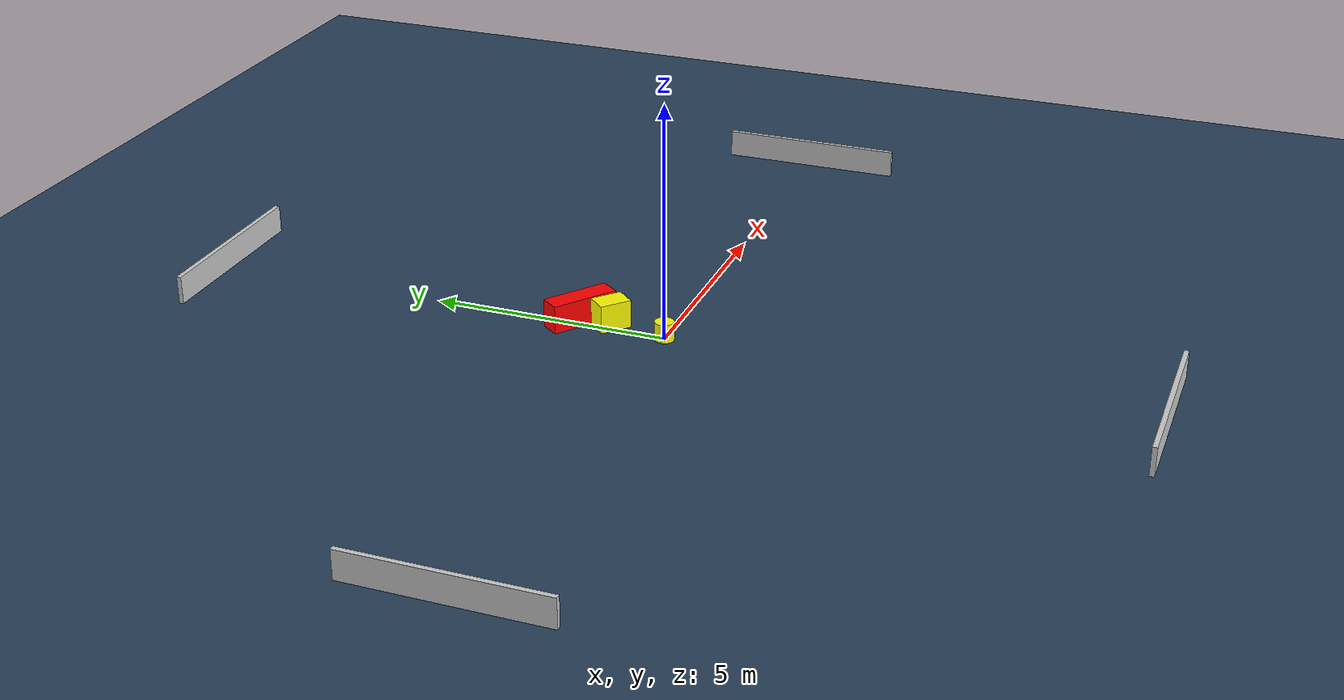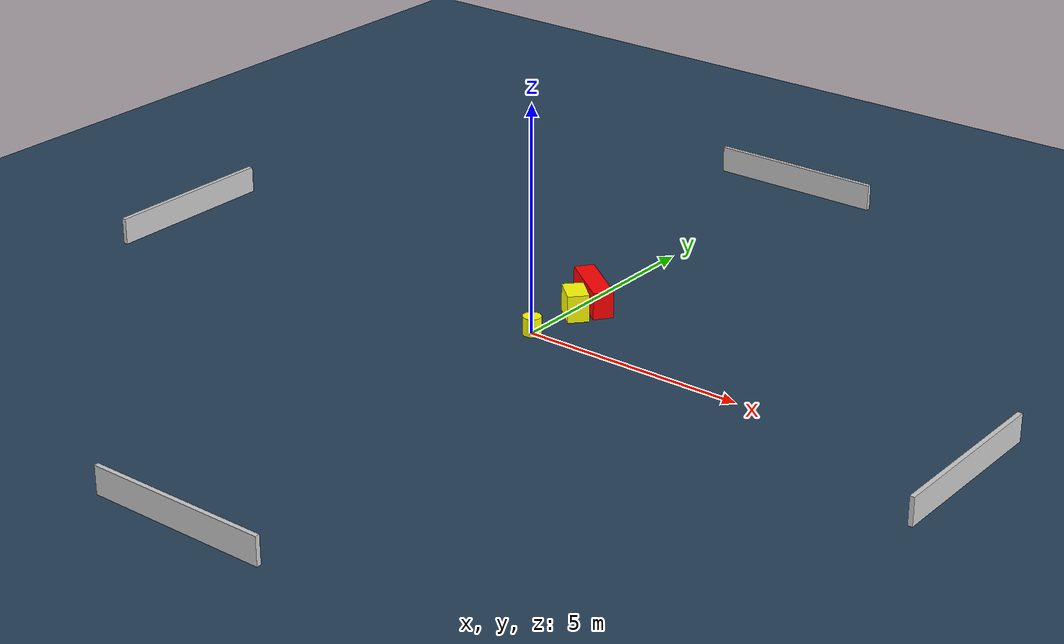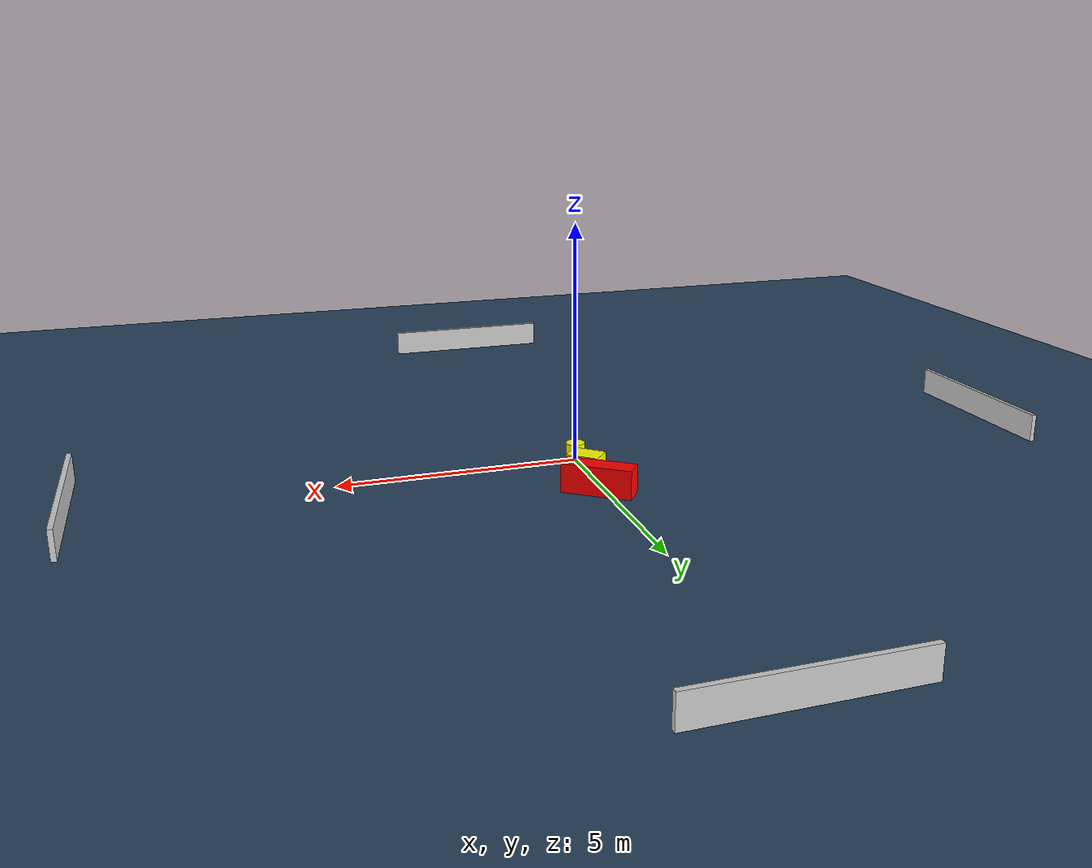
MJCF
<?xml version="1.0" ?>
<mujoco model="generated_environment">
  <option timestep="0.01" integrator="RK4" cone="elliptic"/>
  <default>
    <geom density="1"/>
  </default>
  <asset>
    <texture builtin="gradient" height="3072" name="skybox" rgb1="0.3 0.5 0.7" rgb2="0 0 0" type="skybox" width="512"/>
    <texture builtin="checker" height="300" name="groundplane" rgb1="0.2 0.3 0.4" rgb2="0.1 0.2 0.3" type="2d" width="300"/>
    <material name="groundplane" reflectance="0.2" texrepeat="5 5" texture="groundplane"/>
  </asset>
  <worldbody>
    <light dir="0 0 -1" directional="true" pos="0 0 1.5"/>
    <geom condim="3" friction="0.5 0.005 0.001" material="groundplane" name="floor" pos="0 0 0" size="0 0 0.05" type="plane"/>
    <body name="walls">
      <geom name="wall_1" condim="4" pos="-10.0 0.0 0.3" rgba="0.800000011920929 0.800000011920929 0.800000011920929 1.0" size="0.05 2.0 0.3" type="box"/>
      <geom name="wall_2" condim="4" pos="10.0 0.0 0.3" rgba="0.800000011920929 0.800000011920929 0.800000011920929 1.0" size="0.05 2.0 0.3" type="box"/>
      <geom name="wall_3" condim="4" pos="0.0 -10.0 0.3" rgba="0.800000011920929 0.800000011920929 0.800000011920929 1.0" size="2.0 0.05 0.3" type="box"/>
      <geom name="wall_4" condim="4" pos="0.0 10.0 0.3" rgba="0.800000011920929 0.800000011920929 0.800000011920929 1.0" size="2.0 0.05 0.3" type="box"/>
    </body>
    <body name="robot">
      <joint name="joint_x" type="slide" pos="0 0 0" axis="1 0 0"/>
      <joint name="joint_y" type="slide" pos="0 0 0" axis="0 1 0"/>
      <geom name="robot" type="cylinder" pos="0.0 0.0 0.2" size="0.2 0.2 0.0" mass="5.0" friction="1.0 0.005 0.0001" condim="4" rgba="1.0 1.0 0.0 1.0"/>
    </body>
    <body name="obstacle_1_movable">
      <geom name="obstacle_1_movable" condim="4" pos="0.18003119279608992 1.22968434414911 0.3" euler="0 0 47.85944261402194" friction="0.0 0.005 0.001" rgba="1.0 1.0 0.0 1.0" size="0.23456435009505092 0.3374195833947591 0.3" type="box" mass="0.1"/>
      <joint type="free"/>
    </body>
    <body name="obstacle_2_static">
      <geom name="obstacle_2_static" condim="4" pos="0.14816374333106075 1.8975809563326482 0.3" euler="0 0 53.59446376003312" friction="0.0 0.005 0.001" rgba="1.0 0.0 0.0 1.0" size="0.2207821460096932 0.7212948832003567 0.3" type="box"/>
    </body>
  </worldbody>
  <actuator>
    <motor name="actuator_x" joint="joint_x" gear="1" ctrlrange="-1 1"/>
    <motor name="actuator_y" joint="joint_y" gear="1" ctrlrange="-1 1"/>
  </actuator>
</mujoco>
